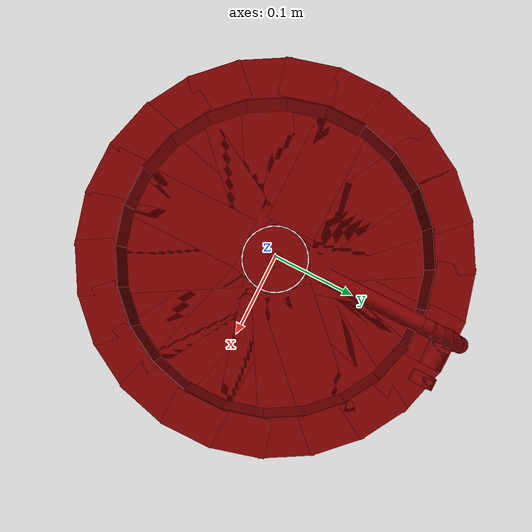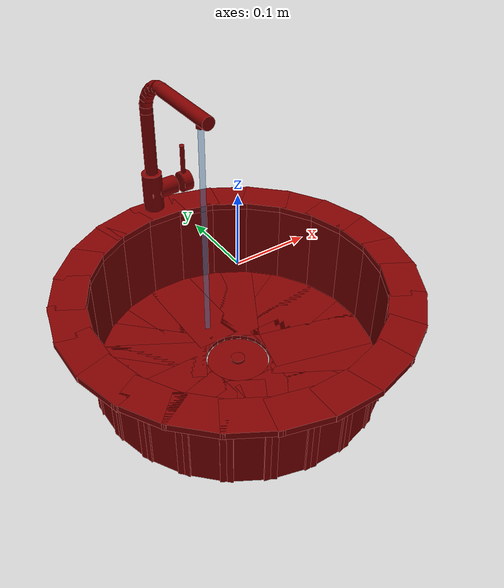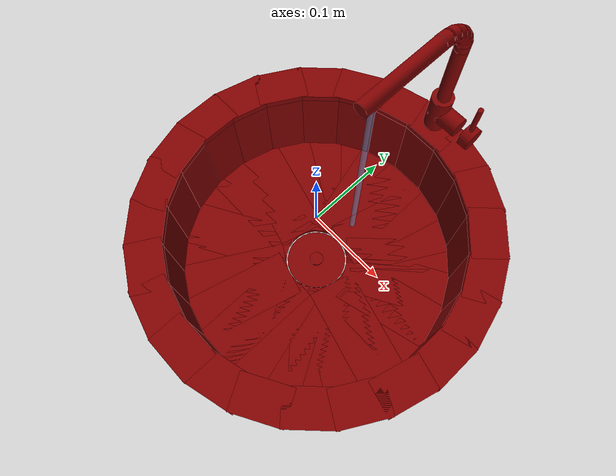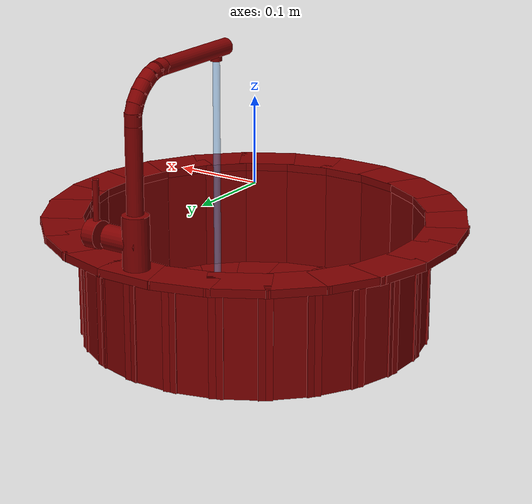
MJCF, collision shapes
<?xml version='1.0' encoding='UTF-8'?>
<mujoco model="model">
  <compiler angle="radian"/>
  <asset>
    <mesh file="visuals/handle.obj" name="handle_vis"/>
    <mesh file="visuals/Body001.obj" name="Body001_vis"/>
    <mesh file="visuals/Funnel001.obj" name="Funnel001_vis"/>
    <mesh file="visuals/spout.obj" name="spout_vis"/>
    <texture file="visuals/T_BC001.png" name="Body001_material" type="2d"/>
    <material name="Body001_material" rgba="1 1 1 1.0" texture="Body001_material" shininess="0.5" specular="2"/>
    <texture file="visuals/T_BC001.png" name="handle_material" type="2d"/>
    <material name="handle_material" rgba="1 1 1 1.0" texture="handle_material" shininess="0.5" specular="2"/>
    <texture file="visuals/T_BC001.png" name="Funnel001_material" type="2d"/>
    <material name="Funnel001_material" rgba="1 1 1 1.0" texture="Funnel001_material" shininess="0.5" specular="1"/>
    <texture file="visuals/T_BC001.png" name="spout_material" type="2d"/>
    <material name="spout_material" rgba="1 1 1 1.0" texture="spout_material" shininess="0.5" specular="2"/>
  </asset>
  <default>
    <default class="visual">
      <geom conaffinity="0" contype="0" group="1" type="mesh"/>
    </default>
    <default class="collision">
      <geom group="0" rgba="0.5 0 0 0.5"/>
    </default>
    <default class="spawn">
      <geom group="0" rgba="1 1 1 0.5" contype="0" conaffinity="0"/>
      <site group="0" rgba="1 1 1 0.5"/>
    </default>
    <default class="region">
      <geom group="1" conaffinity="0" contype="0" rgba="0 1 0 0"/>
    </default>
  </default>
  <worldbody>
    <body>
      <body name="object">
        <geom mesh="Body001_vis" type="mesh" solimp="0.998 0.998 0.001" solref="0.001 1" density="100" friction="0.95 0.3 0.1" class="visual" material="Body001_material"/>
        <geom class="collision" type="box" pos="-0.000000 -0.215028 -0.040679" size="0.033866215497255325 0.023684127256274223 0.00461614690721035" quat="1.0 0.0 0.0 0.0"/>
        <geom class="collision" type="box" pos="-0.000000 -0.194624 -0.109557" size="0.033866215497255325 0.0025562462396919727 0.06660372018814087" quat="1.0 0.0 0.0 0.0"/>
        <geom class="collision" type="box" pos="-0.000000 -0.119207 -0.168954" size="0.033866215497255325 0.0751594677567482 0.003272552974522114" quat="1.0 0.0 0.0 0.0"/>
        <geom class="collision" type="box" pos="-0.058240 -0.207005 -0.040679" size="0.033866215497255325 0.023684000596404076 0.00461614690721035" quat="0.9914448261260986 0.0 -0.0 -0.1305263340473175"/>
        <geom class="collision" type="box" pos="-0.050363 -0.187992 -0.109557" size="0.033866215497255325 0.06660331785678864 0.0025562408845871687" quat="0.7010574340820312 0.7010573744773865 -0.09229595214128494 -0.09229595959186554"/>
        <geom class="collision" type="box" pos="-0.030843 -0.115144 -0.168954" size="0.033866215497255325 0.07515911757946014 0.003272552974522114" quat="0.9914448261260986 0.0 -0.0 -0.1305263340473175"/>
        <geom class="collision" type="box" pos="-0.107494 -0.186221 -0.040679" size="0.033866215497255325 0.023684000596404076 0.00461614690721035" quat="0.9659258127212524 0.0 -0.0 -0.2588191032409668"/>
        <geom class="collision" type="box" pos="-0.097292 -0.168551 -0.109557" size="0.033866215497255325 0.06660331785678864 0.0025562408845871687" quat="0.6830127239227295 0.6830126643180847 -0.1830126941204071 -0.1830127090215683"/>
        <geom class="collision" type="box" pos="-0.059584 -0.103237 -0.168954" size="0.033866215497255325 0.07515911012887955 0.003272552974522114" quat="0.9659258127212524 0.0 -0.0 -0.2588191032409668"/>
        <geom class="collision" type="box" pos="-0.152019 -0.152054 -0.040679" size="0.033866215497255325 0.023684000596404076 0.00461614690721035" quat="0.9238795042037964 0.0 -0.0 -0.3826834559440613"/>
        <geom class="collision" type="box" pos="-0.137591 -0.137626 -0.109557" size="0.033866215497255325 0.06660331785678864 0.0025562411174178123" quat="0.6532815098762512 0.6532814502716064 -0.27059802412986755 -0.27059805393218994"/>
        <geom class="collision" type="box" pos="-0.084263 -0.084297 -0.168954" size="0.033866215497255325 0.07515911757946014 0.003272552974522114" quat="0.9238795042037964 0.0 -0.0 -0.3826834559440613"/>
        <geom class="collision" type="box" pos="-0.186184 -0.107526 -0.040679" size="0.033866215497255325 0.023684000596404076 0.00461614690721035" quat="0.8660253882408142 0.0 -0.0 -0.5"/>
        <geom class="collision" type="box" pos="-0.168513 -0.097324 -0.109557" size="0.033866215497255325 0.06660331785678864 0.0025562411174178123" quat="0.6123724579811096 0.6123723983764648 -0.3535533845424652 -0.3535534143447876"/>
        <geom class="collision" type="box" pos="-0.103200 -0.059616 -0.168954" size="0.033866215497255325 0.07515911757946014 0.003272552974522114" quat="0.8660253882408142 0.0 -0.0 -0.5"/>
        <geom class="collision" type="box" pos="-0.206822 -0.058801 -0.040679" size="0.033866215497255325 0.023684000596404076 0.00461614690721035" quat="0.7933533191680908 0.0 -0.0 -0.6087614297866821"/>
        <geom class="collision" type="box" pos="-0.187951 -0.050393 -0.109557" size="0.033866215497255325 0.06660331785678864 0.0025562408845871687" quat="0.5609855651855469 0.5609855055809021 -0.43045932054519653 -0.4304593503475189"/>
        <geom class="collision" type="box" pos="-0.115103 -0.030873 -0.168954" size="0.033866215497255325 0.07515911757946014 0.003272552974522114" quat="0.7933533191680908 0.0 -0.0 -0.6087614297866821"/>
        <geom class="collision" type="box" pos="-0.214984 -0.000030 -0.040679" size="0.023684002459049225 0.03386631980538368 0.00461614690721035" quat="1.0 0.0 0.0 0.0"/>
        <geom class="collision" type="box" pos="-0.194579 -0.000030 -0.109557" size="0.002556248800829053 0.03386622294783592 0.0666036307811737" quat="1.0 0.0 0.0 0.0"/>
        <geom class="collision" type="box" pos="-0.119162 -0.000030 -0.168954" size="0.07515911757946014 0.03386635333299637 0.003272552974522114" quat="1.0 0.0 0.0 0.0"/>
        <geom class="collision" type="box" pos="-0.207022 0.057978 -0.040679" size="0.033866215497255325 0.023684000596404076 0.00461614690721035" quat="0.6087614297866821 0.0 -0.0 -0.7933533191680908"/>
        <geom class="collision" type="box" pos="-0.187947 0.050333 -0.109557" size="0.033866215497255325 0.06660331785678864 0.0025562408845871687" quat="0.4304593503475189 0.43045932054519653 -0.5609855055809021 -0.5609855651855469"/>
        <geom class="collision" type="box" pos="-0.115099 0.030813 -0.168954" size="0.033866215497255325 0.07515911757946014 0.003272552974522114" quat="0.6087614297866821 0.0 -0.0 -0.7933533191680908"/>
        <geom class="collision" type="box" pos="-0.186177 0.107465 -0.040679" size="0.033866215497255325 0.023684000596404076 0.00461614690721035" quat="0.5000000596046448 0.0 -0.0 -0.8660253882408142"/>
        <geom class="collision" type="box" pos="-0.168506 0.097262 -0.109557" size="0.033866215497255325 0.06660331785678864 0.0025562411174178123" quat="0.35355329513549805 0.35355344414711 -0.6123725771903992 -0.6123723387718201"/>
        <geom class="collision" type="box" pos="-0.103193 0.059554 -0.168954" size="0.033866215497255325 0.07515911757946014 0.003272552974522114" quat="0.5000000596046448 0.0 -0.0 -0.8660253882408142"/>
        <geom class="collision" type="box" pos="-0.152009 0.151989 -0.040679" size="0.033866215497255325 0.023684000596404076 0.00461614690721035" quat="0.38268354535102844 0.0 -0.0 -0.9238795042037964"/>
        <geom class="collision" type="box" pos="-0.137581 0.137562 -0.109557" size="0.033866215497255325 0.06660331785678864 0.0025562411174178123" quat="0.2705981433391571 0.2705981135368347 -0.6532814502716064 -0.6532814502716064"/>
        <geom class="collision" type="box" pos="-0.084253 0.084233 -0.168954" size="0.033866215497255325 0.07515911757946014 0.003272552974522114" quat="0.38268354535102844 0.0 -0.0 -0.9238795042037964"/>
        <geom class="collision" type="box" pos="-0.107482 0.186154 -0.040679" size="0.033866215497255325 0.023684000596404076 0.00461614690721035" quat="0.2588190734386444 0.0 -0.0 -0.9659258127212524"/>
        <geom class="collision" type="box" pos="-0.097280 0.168484 -0.109557" size="0.033866215497255325 0.06660331785678864 0.0025562411174178123" quat="0.1830127239227295 0.1830127090215683 -0.6830126643180847 -0.6830127239227295"/>
        <geom class="collision" type="box" pos="-0.059571 0.103170 -0.168954" size="0.033866215497255325 0.07515911757946014 0.003272552974522114" quat="0.2588190734386444 0.0 -0.0 -0.9659258127212524"/>
        <geom class="collision" type="box" pos="-0.057719 0.207070 -0.040679" size="0.033866215497255325 0.023684000596404076 0.00461614690721035" quat="0.13052624464035034 0.0 -0.0 -0.9914448261260986"/>
        <geom class="collision" type="box" pos="-0.050348 0.187921 -0.109557" size="0.033866215497255325 0.06660331785678864 0.0025562408845871687" quat="0.09229599684476852 0.09229598939418793 -0.7010573744773865 -0.7010574340820312"/>
        <geom class="collision" type="box" pos="-0.030829 0.115073 -0.168954" size="0.033866215497255325 0.07515911757946014 0.003272552974522114" quat="0.13052624464035034 0.0 -0.0 -0.9914448261260986"/>
        <geom class="collision" type="box" pos="0.000015 0.214954 -0.040679" size="0.033866219222545624 0.023684082552790642 0.00461614690721035" quat="1.0 0.0 0.0 0.0"/>
        <geom class="collision" type="box" pos="0.000015 0.194550 -0.109557" size="0.033866215497255325 0.0025562515947967768 0.06660354882478714" quat="1.0 0.0 0.0 0.0"/>
        <geom class="collision" type="box" pos="0.000015 0.119132 -0.168954" size="0.03386622667312622 0.07515931129455566 0.003272552974522114" quat="1.0 0.0 0.0 0.0"/>
        <geom class="collision" type="box" pos="0.057722 0.207073 -0.040679" size="0.033866215497255325 0.023684000596404076 0.00461614690721035" quat="0.13052624464035034 0.0 0.0 0.9914448261260986"/>
        <geom class="collision" type="box" pos="0.050377 0.187917 -0.109557" size="0.033866215497255325 0.06660331785678864 0.0025562408845871687" quat="0.09229599684476852 0.09229598939418793 0.7010573744773865 0.7010574340820312"/>
        <geom class="collision" type="box" pos="0.030858 0.115070 -0.168954" size="0.033866215497255325 0.07515911757946014 0.003272552974522114" quat="0.13052624464035034 0.0 0.0 0.9914448261260986"/>
        <geom class="collision" type="box" pos="0.107509 0.186147 -0.040679" size="0.033866215497255325 0.023684000596404076 0.00461614690721035" quat="0.25881895422935486 0.0 0.0 0.9659258723258972"/>
        <geom class="collision" type="box" pos="0.097307 0.168476 -0.109557" size="0.033866215497255325 0.06660331785678864 0.0025562411174178123" quat="0.1830127239227295 0.1830127090215683 0.6830126643180847 0.6830127239227295"/>
        <geom class="collision" type="box" pos="0.059598 0.103163 -0.168954" size="0.033866215497255325 0.07515911012887955 0.003272552974522114" quat="0.25881895422935486 0.0 0.0 0.9659258723258972"/>
        <geom class="collision" type="box" pos="0.152034 0.151979 -0.040679" size="0.033866215497255325 0.023684000596404076 0.00461614690721035" quat="0.38268330693244934 0.0 0.0 0.9238795638084412"/>
        <geom class="collision" type="box" pos="0.137606 0.137551 -0.109557" size="0.033866215497255325 0.06660331785678864 0.0025562411174178123" quat="0.27059805393218994 0.27059805393218994 0.6532814502716064 0.6532815098762512"/>
        <geom class="collision" type="box" pos="0.084278 0.084223 -0.168954" size="0.033866215497255325 0.07515911757946014 0.003272552974522114" quat="0.38268330693244934 0.0 0.0 0.9238795638084412"/>
        <geom class="collision" type="box" pos="0.186199 0.107452 -0.040679" size="0.033866215497255325 0.023684000596404076 0.00461614690721035" quat="0.5000000596046448 0.0 0.0 0.8660253882408142"/>
        <geom class="collision" type="box" pos="0.168528 0.097250 -0.109557" size="0.033866215497255325 0.06660331785678864 0.0025562411174178123" quat="0.35355329513549805 0.35355344414711 0.6123725771903992 0.6123723387718201"/>
        <geom class="collision" type="box" pos="0.103215 0.059541 -0.168954" size="0.033866215497255325 0.07515911757946014 0.003272552974522114" quat="0.5000000596046448 0.0 0.0 0.8660253882408142"/>
        <geom class="collision" type="box" pos="0.206992 0.058145 -0.040679" size="0.033866215497255325 0.023684000596404076 0.00461614690721035" quat="0.6087614297866821 0.0 0.0 0.7933533191680908"/>
        <geom class="collision" type="box" pos="0.187966 0.050318 -0.109557" size="0.033866215497255325 0.06660331785678864 0.0025562411174178123" quat="0.4304594099521637 0.43045932054519653 0.5609855055809021 0.5609855055809021"/>
        <geom class="collision" type="box" pos="0.115118 0.030799 -0.168954" size="0.033866215497255325 0.07515911757946014 0.003272552974522114" quat="0.6087614297866821 0.0 0.0 0.7933533191680908"/>
        <geom class="collision" type="box" pos="0.214998 -0.000045 -0.040679" size="0.023684006184339523 0.033866267651319504 0.00461614690721035" quat="1.0 0.0 0.0 0.0"/>
        <geom class="collision" type="box" pos="0.194594 -0.000045 -0.109557" size="0.0025562497321516275 0.03386622667312622 0.06660345941781998" quat="1.0 0.0 0.0 0.0"/>
        <geom class="collision" type="box" pos="0.119177 -0.000045 -0.168954" size="0.07515912503004074 0.0338662788271904 0.003272552974522114" quat="1.0 0.0 0.0 0.0"/>
        <geom class="collision" type="box" pos="0.207015 -0.058135 -0.040679" size="0.033866215497255325 0.023684000596404076 0.00461614690721035" quat="0.7933534979820251 0.0 0.0 0.6087612509727478"/>
        <geom class="collision" type="box" pos="0.187962 -0.050407 -0.109557" size="0.033866219222545624 0.06660331785678864 0.002556241350248456" quat="0.5609855651855469 0.5609856247901917 0.43045923113822937 0.43045923113822937"/>
        <geom class="collision" type="box" pos="0.115114 -0.030888 -0.168954" size="0.033866215497255325 0.07515911757946014 0.003272552974522114" quat="0.7933534979820251 0.0 0.0 0.6087612509727478"/>
        <geom class="collision" type="box" pos="0.186191 -0.107539 -0.040679" size="0.033866215497255325 0.023684002459049225 0.00461614690721035" quat="0.8660253882408142 0.0 0.0 0.5000000596046448"/>
        <geom class="collision" type="box" pos="0.168521 -0.097337 -0.109557" size="0.033866215497255325 0.06660331785678864 0.002556241350248456" quat="0.6123724579811096 0.6123723983764648 0.3535534143447876 0.35355344414711"/>
        <geom class="collision" type="box" pos="0.103207 -0.059628 -0.168954" size="0.033866215497255325 0.07515911757946014 0.003272552974522114" quat="0.8660253882408142 0.0 0.0 0.5000000596046448"/>
        <geom class="collision" type="box" pos="0.152024 -0.152064 -0.040679" size="0.033866215497255325 0.023684000596404076 0.00461614690721035" quat="0.9238795042037964 0.0 0.0 0.3826834559440613"/>
        <geom class="collision" type="box" pos="0.137596 -0.137636 -0.109557" size="0.033866215497255325 0.06660331785678864 0.002556241350248456" quat="0.6532815098762512 0.6532814502716064 0.27059808373451233 0.2705981135368347"/>
        <geom class="collision" type="box" pos="0.084268 -0.084308 -0.168954" size="0.033866215497255325 0.07515911757946014 0.003272552974522114" quat="0.9238795042037964 0.0 0.0 0.3826834559440613"/>
        <geom class="collision" type="box" pos="0.107496 -0.186228 -0.040679" size="0.033866215497255325 0.023684000596404076 0.00461614690721035" quat="0.9659258723258972 0.0 0.0 0.25881892442703247"/>
        <geom class="collision" type="box" pos="0.097294 -0.168558 -0.109557" size="0.033866219222545624 0.06660331785678864 0.0025562411174178123" quat="0.6830127239227295 0.6830127239227295 0.18301260471343994 0.18301260471343994"/>
        <geom class="collision" type="box" pos="0.059586 -0.103245 -0.168954" size="0.033866215497255325 0.07515911012887955 0.003272552974522114" quat="0.9659258723258972 0.0 0.0 0.25881892442703247"/>
        <geom class="collision" type="box" pos="0.058000 -0.207073 -0.040679" size="0.033866215497255325 0.023684000596404076 0.00461614690721035" quat="0.9914448857307434 0.0 0.0 0.1305261105298996"/>
        <geom class="collision" type="box" pos="0.050363 -0.187995 -0.109557" size="0.033866215497255325 0.06660331785678864 0.0025562411174178123" quat="0.7010574340820312 0.7010573744773865 0.09229589253664017 0.09229589253664017"/>
        <geom class="collision" type="box" pos="0.030844 -0.115148 -0.168954" size="0.033866215497255325 0.07515911757946014 0.003272552974522114" quat="0.9914448857307434 0.0 0.0 0.1305261105298996"/>
        <geom class="collision" type="cylinder" pos="-0.002382 0.219082 -0.005413" size="0.01463507954031229 0.028745269402861595" quat="1.0 0.0 0.0 0.0"/>
        <geom class="collision" type="cylinder" pos="0.012324 0.219082 -0.006778" size="0.013429157435894012 0.021804798394441605" quat="0.7071068286895752 -0.0 0.7071067690849304 0.0"/>
        <body name="handle">
          <joint axis="1.0 0.0 0.0" pos="0.049490 0.218873 -0.007052" limited="true" name="handle_temp_joint" type="hinge" range="-0.7853981633974483 0.7853981633974483" damping="1" frictionloss="1" armature=".01" stiffness="0.05"/>
          <joint axis="0.0 1.0 0.0" pos="0.049490 0.218873 -0.007052" limited="true" name="handle_joint" type="hinge" range="0.0 0.3490658503988659" damping="1" frictionloss="1" armature=".01" stiffness="0.05"/>
          <geom mesh="handle_vis" type="mesh" solimp="0.998 0.998 0.001" solref="0.001 1" density="100" friction="0.95 0.3 0.1" class="visual" material="handle_material"/>
          <geom class="collision" type="cylinder" pos="0.050647 0.218870 -0.007080" size="0.01529636885970831 0.007576568517833948" quat="0.7071068286895752 -0.0 0.7071067690849304 0.0"/>
          <geom class="collision" type="cylinder" pos="0.049140 0.218912 0.029898" size="0.0035054702311754227 0.022773226723074913" quat="1.0 0.0 0.0 0.0"/>
        </body>
        <body name="Funnel001">
          <joint axis="0.0 0.0 1.0" pos="0.000007 -0.000037 -0.176724" limited="true" name="Funnel001_joint" range="0.0 0.1" type="slide" damping="0" frictionloss="0" armature="0" stiffness="0"/>
          <geom mesh="Funnel001_vis" type="mesh" solimp="0.998 0.998 0.001" solref="0.001 1" density="100" friction="0.95 0.3 0.1" class="visual" material="Funnel001_material"/>
          <geom class="collision" type="cylinder" pos="0.000007 -0.000037 -0.171715" size="0.042641691863536835 0.0007942306692712009" quat="1.0 0.0 0.0 0.0"/>
          <geom class="collision" type="cylinder" pos="0.000007 -0.000037 -0.167392" size="0.009646056219935417 0.0020293036941438913" quat="1.0 0.0 0.0 0.0"/>
        </body>
        <body name="spout">
          <joint axis="0.0 0.0 1.0" pos="-0.002206 0.219137 0.099794" limited="true" name="spout_joint" range="-0.7853981633974483 0.7853981633974483" type="hinge" damping="1" frictionloss="1" armature=".01" stiffness="0.05"/>
          <site type="cylinder" rgba="0.5 0.75 1 0.5" size="0.003897867165505886 0.16643905639648438" pos="-0.002359 0.076035 -0.009312" name="water"/>
          <geom mesh="spout_vis" type="mesh" solimp="0.998 0.998 0.001" solref="0.001 1" density="100" friction="0.95 0.3 0.1" class="visual" material="spout_material"/>
          <geom class="collision" type="cylinder" pos="-0.002207 0.218872 0.070953" size="0.009113517589867115 0.04663829877972603" quat="1.0 0.0 0.0 0.0"/>
          <geom class="collision" type="cylinder" pos="-0.002207 0.076106 0.158788" size="0.006267251912504435 0.0032119145616889" quat="1.0 0.0 0.0 0.0"/>
          <geom class="collision" type="cylinder" pos="-0.002207 0.218872 0.124327" size="0.00911351665854454 0.006880446337163448" quat="1.0 0.0 0.0 0.0"/>
          <geom class="collision" type="cylinder" pos="-0.002207 0.216732 0.133868" size="0.009113517589867115 0.006880446337163448" quat="0.9833017587661743 0.18198253214359283 -4.040823945308088e-17 -2.3274321405825955e-24"/>
          <geom class="collision" type="cylinder" pos="-0.002207 0.211900 0.143716" size="0.009113517589867115 0.006880446802824736" quat="0.9554436206817627 0.29517367482185364 -6.554172201008815e-17 -9.897835805655772e-25"/>
          <geom class="collision" type="cylinder" pos="-0.002207 0.204193 0.153012" size="0.009113517589867115 0.006880446337163448" quat="0.9210039377212524 0.3895533084869385 -8.64982038627762e-17 2.2436633560445836e-23"/>
          <geom class="collision" type="cylinder" pos="-0.002207 0.194713 0.160597" size="0.009113517589867115 0.006880445871502161" quat="0.8841060400009155 0.46728628873825073 -1.0375839936976899e-16 2.1039518298810542e-23"/>
          <geom class="collision" type="cylinder" pos="-0.002207 0.184804 0.165490" size="0.009113517589867115 0.006880446802824736" quat="0.8082178831100464 0.5888835787773132 -1.3075844806622667e-16 2.686716354953654e-23"/>
          <geom class="collision" type="cylinder" pos="-0.002207 0.175324 0.167692" size="0.009113517589867115 0.006880446337163448" quat="0.7533880472183228 0.6575762033462524 -1.4601126151501047e-16 3.086439196491197e-24"/>
          <geom class="collision" type="cylinder" pos="-0.002235 0.114240 0.167837" size="0.009113517589867115 0.05619756877422333" quat="0.7071067094802856 0.7071068286895752 0.0 0.0"/>
        </body>
        <geom class="region" name="reg_main" type="box" pos="0.0 0.0 -0.109208" size="0.238775 0.238775 0.07405500000000001"/>
        <geom class="region" name="reg_basin" type="box" pos="-0.00033800000000000496 -0.00026549999999998797 -0.1032595" size="0.194693 0.19574249999999999 0.06527949999999999"/>
      </body>
    </body>
  </worldbody>
  <actuator>
    <motor name="handle_temp_joint_actuator" joint="handle_temp_joint" gear="10"/>
    <motor name="handle_joint_actuator" joint="handle_joint" gear="10"/>
    <motor name="Funnel001_joint_actuator" joint="Funnel001_joint" gear="10"/>
    <motor name="spout_joint_actuator" joint="spout_joint" gear="10"/>
  </actuator>
</mujoco>
